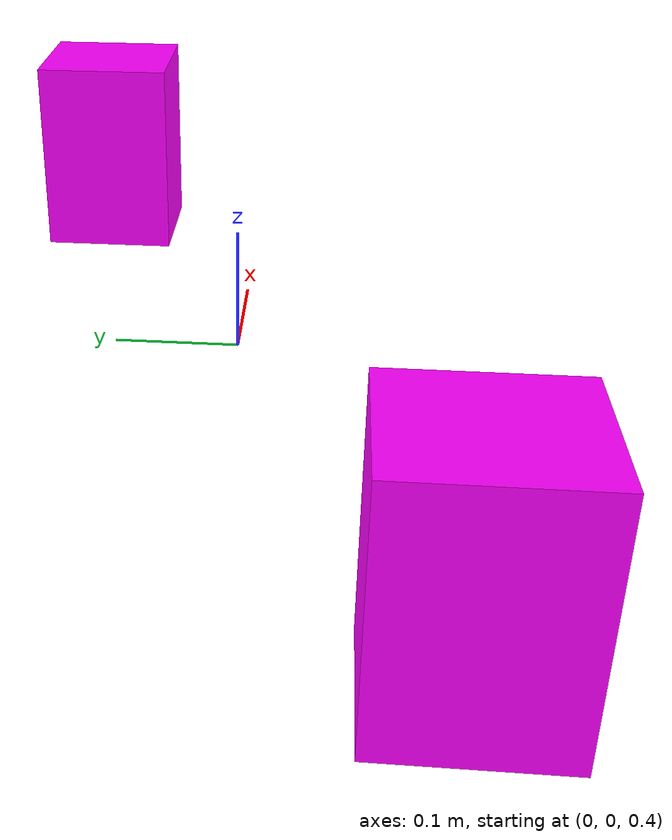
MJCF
<mujoco model="boxes">

  <option timestep="0.002" iterations="100" solver="Newton" gravity="0 0 -9.81" integrator="RK4"></option>

  <default>
    <joint type="free"/>
  </default>

  <worldbody>
    <body name="box0" pos="0.326 0.158 0.452">
      <joint/>
      <geom name="boxshape0" type="box" size=".0525 .0625 .0925" mass=".063" rgba="1 0 1 1"/>
    </body>
    <body name="box1" pos="-0.326 -0.158 0.452">
      <joint/>
      <geom name="boxshape1" type="box" size=".0525 .0625 .0925" mass=".063" rgba="1 0 1 1"/>
    </body>

  </worldbody>

  <contact>
    <pair geom1="body" geom2="boxshape0" condim="6" friction="0.05 0.05"/>
    <pair geom1="boxshape0" geom2="boxshape1" condim="6" friction="0.05 0.05"/>
    <pair geom1="body" geom2="boxshape1" condim="6" friction="0.05 0.05"/>
  </contact>

</mujoco>
